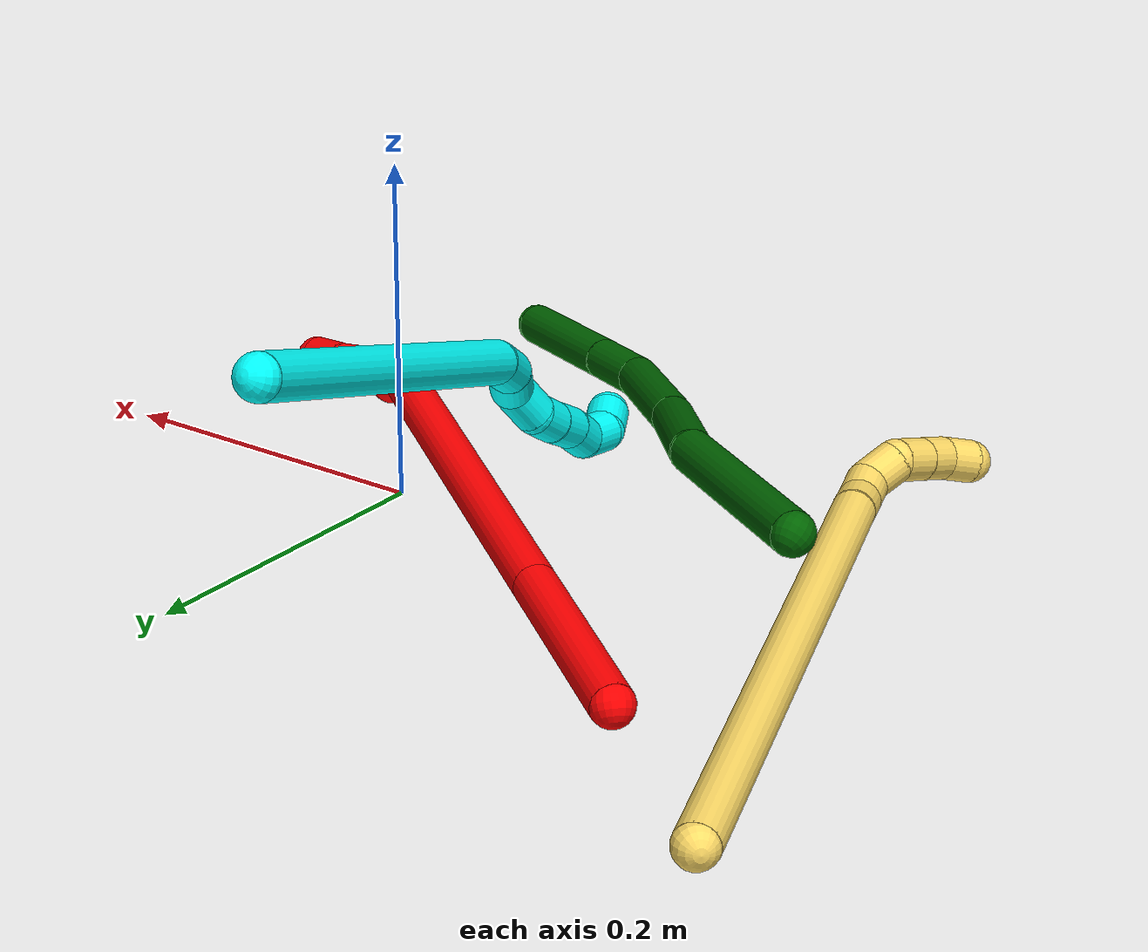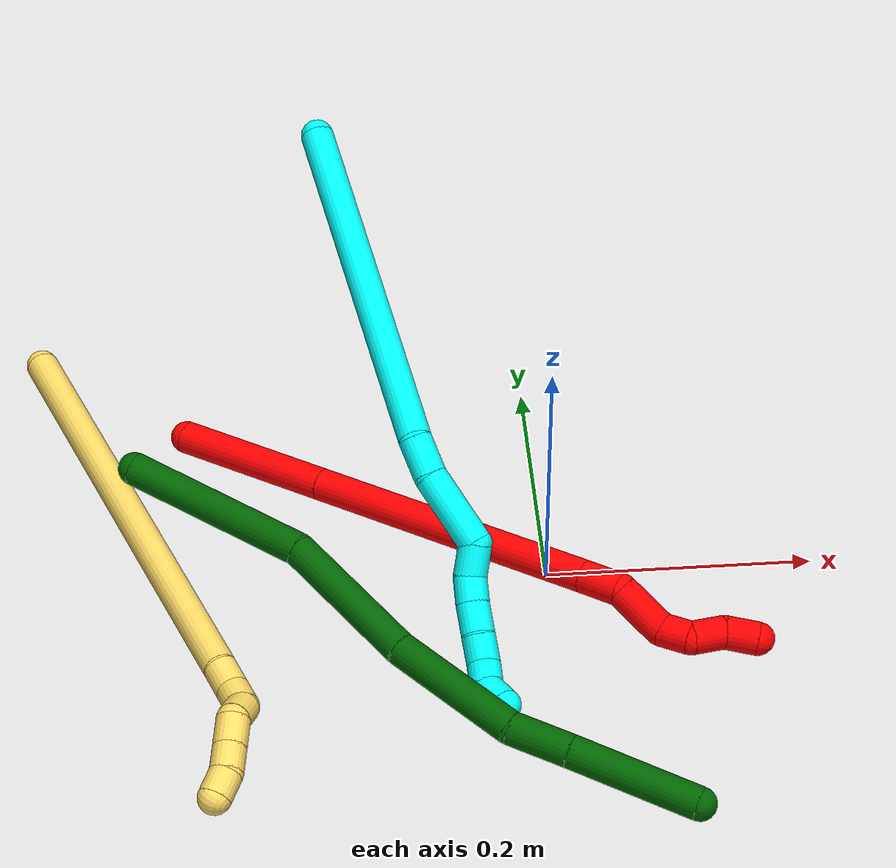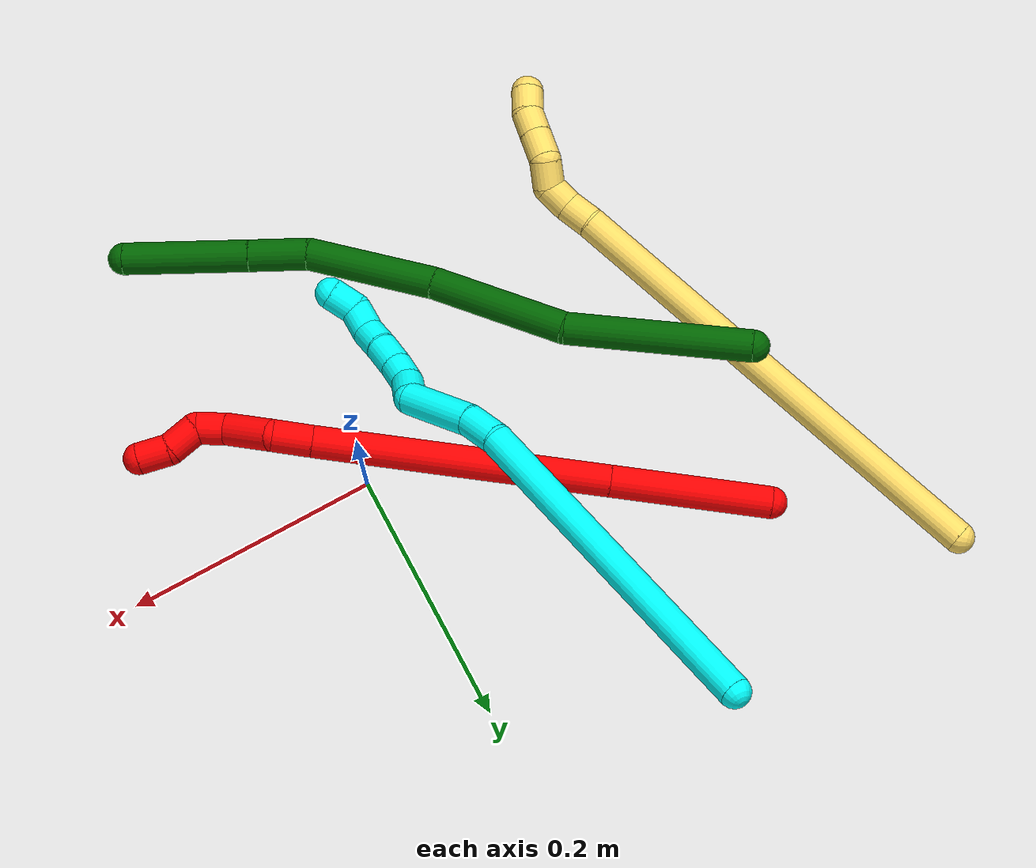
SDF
<sdf version="1.7">
 <world name="default">
  <model name="2">
   <static>0</static>
   <link name="2">
    <collision name="collision-cylinder-e_1_1_4">
     <pose>0.024957 -0.03979 -0.041198 2.37357 0.41092 0.95234</pose>
     <geometry><cylinder><radius>0.0125</radius><length>0.124954</length></cylinder></geometry>
     <surface>
      <friction><ode><mu>1.16</mu><mu2>1.16</mu2><slip1>0</slip1><slip2>0</slip2></ode></friction>
      <contact><ode><kp>1e+06</kp><kd>1</kd><max_vel>0</max_vel><min_depth>0.001</min_depth></ode></contact>
     </surface>
    </collision>
    <visual name="visual-cylinder-e_1_1_4">
     <pose>0.024957 -0.03979 -0.041198 2.37357 0.41092 0.95234</pose>
     <geometry><cylinder><radius>0.0125</radius><length>0.124954</length></cylinder></geometry>
     <material><ambient>1 0 0 1</ambient></material>
    </visual>
    <collision name="collision-cylinder-e_2_4_5">
     <pose>0.09571 -0.152585 -0.157852 2.37271 0.411314 0.952135</pose>
     <geometry><cylinder><radius>0.0125</radius><length>0.229089</length></cylinder></geometry>
     <surface>
      <friction><ode><mu>1.16</mu><mu2>1.16</mu2><slip1>0</slip1><slip2>0</slip2></ode></friction>
      <contact><ode><kp>1e+06</kp><kd>1</kd><max_vel>0</max_vel><min_depth>0.001</min_depth></ode></contact>
     </surface>
    </collision>
    <visual name="visual-cylinder-e_2_4_5">
     <pose>0.09571 -0.152585 -0.157852 2.37271 0.411314 0.952135</pose>
     <geometry><cylinder><radius>0.0125</radius><length>0.229089</length></cylinder></geometry>
     <material><ambient>1 0 0 1</ambient></material>
    </visual>
    <collision name="collision-cylinder-e_3_5_6">
     <pose>0.147825 -0.235201 -0.243484 2.38472 0.423989 0.992309</pose>
     <geometry><cylinder><radius>0.0125</radius><length>0.030717</length></cylinder></geometry>
     <surface>
      <friction><ode><mu>1.16</mu><mu2>1.16</mu2><slip1>0</slip1><slip2>0</slip2></ode></friction>
      <contact><ode><kp>1e+06</kp><kd>1</kd><max_vel>0</max_vel><min_depth>0.001</min_depth></ode></contact>
     </surface>
    </collision>
    <visual name="visual-cylinder-e_3_5_6">
     <pose>0.147825 -0.235201 -0.243484 2.38472 0.423989 0.992309</pose>
     <geometry><cylinder><radius>0.0125</radius><length>0.030717</length></cylinder></geometry>
     <material><ambient>1 0 0 1</ambient></material>
    </visual>
    <collision name="collision-cylinder-e_4_6_7">
     <pose>0.167466 -0.260216 -0.257243 1.79923 0.700092 0.861778</pose>
     <geometry><cylinder><radius>0.0125</radius><length>0.041357</length></cylinder></geometry>
     <surface>
      <friction><ode><mu>1.16</mu><mu2>1.16</mu2><slip1>0</slip1><slip2>0</slip2></ode></friction>
      <contact><ode><kp>1e+06</kp><kd>1</kd><max_vel>0</max_vel><min_depth>0.001</min_depth></ode></contact>
     </surface>
    </collision>
    <visual name="visual-cylinder-e_4_6_7">
     <pose>0.167466 -0.260216 -0.257243 1.79923 0.700092 0.861778</pose>
     <geometry><cylinder><radius>0.0125</radius><length>0.041357</length></cylinder></geometry>
     <material><ambient>1 0 0 1</ambient></material>
    </visual>
    <collision name="collision-cylinder-e_5_7_8">
     <pose>0.184645 -0.283928 -0.268107 2.29059 0.335754 0.715713</pose>
     <geometry><cylinder><radius>0.0125</radius><length>0.023402</length></cylinder></geometry>
     <surface>
      <friction><ode><mu>1.16</mu><mu2>1.16</mu2><slip1>0</slip1><slip2>0</slip2></ode></friction>
      <contact><ode><kp>1e+06</kp><kd>1</kd><max_vel>0</max_vel><min_depth>0.001</min_depth></ode></contact>
     </surface>
    </collision>
    <visual name="visual-cylinder-e_5_7_8">
     <pose>0.184645 -0.283928 -0.268107 2.29059 0.335754 0.715713</pose>
     <geometry><cylinder><radius>0.0125</radius><length>0.023402</length></cylinder></geometry>
     <material><ambient>1 0 0 1</ambient></material>
    </visual>
    <collision name="collision-cylinder-e_6_8_9">
     <pose>0.185044 -0.303871 -0.279476 1.90853 -0.273221 -0.383191</pose>
     <geometry><cylinder><radius>0.0125</radius><length>0.025615</length></cylinder></geometry>
     <surface>
      <friction><ode><mu>1.16</mu><mu2>1.16</mu2><slip1>0</slip1><slip2>0</slip2></ode></friction>
      <contact><ode><kp>1e+06</kp><kd>1</kd><max_vel>0</max_vel><min_depth>0.001</min_depth></ode></contact>
     </surface>
    </collision>
    <visual name="visual-cylinder-e_6_8_9">
     <pose>0.185044 -0.303871 -0.279476 1.90853 -0.273221 -0.383191</pose>
     <geometry><cylinder><radius>0.0125</radius><length>0.025615</length></cylinder></geometry>
     <material><ambient>1 0 0 1</ambient></material>
    </visual>
    <collision name="collision-cylinder-e_7_9_2">
     <pose>0.183385 -0.32667 -0.288732 2.00446 0.145043 0.22643</pose>
     <geometry><cylinder><radius>0.0125</radius><length>0.024865</length></cylinder></geometry>
     <surface>
      <friction><ode><mu>1.16</mu><mu2>1.16</mu2><slip1>0</slip1><slip2>0</slip2></ode></friction>
      <contact><ode><kp>1e+06</kp><kd>1</kd><max_vel>0</max_vel><min_depth>0.001</min_depth></ode></contact>
     </surface>
    </collision>
    <visual name="visual-cylinder-e_7_9_2">
     <pose>0.183385 -0.32667 -0.288732 2.00446 0.145043 0.22643</pose>
     <geometry><cylinder><radius>0.0125</radius><length>0.024865</length></cylinder></geometry>
     <material><ambient>1 0 0 1</ambient></material>
    </visual>
    <collision name="collision-sphere-2">
     <pose>0.185182 -0.337833 -0.293901 0 -0 0</pose>
     <geometry><sphere><radius>0.0125</radius></sphere></geometry>
     <surface>
      <friction><ode><mu>1.16</mu><mu2>1.16</mu2><slip1>0</slip1><slip2>0</slip2></ode></friction>
      <contact><ode><kp>1e+06</kp><kd>1</kd><max_vel>0</max_vel><min_depth>0.001</min_depth></ode></contact>
     </surface>
    </collision>
    <visual name="visual-sphere-2">
     <pose>0.185182 -0.337833 -0.293901 0 -0 0</pose>
     <geometry><sphere><radius>0.0125</radius></sphere></geometry>
     <material><ambient>1 0 0 1</ambient></material>
    </visual>
    <collision name="collision-sphere-9">
     <pose>0.181588 -0.315507 -0.283563 0 -0 0</pose>
     <geometry><sphere><radius>0.0125</radius></sphere></geometry>
     <surface>
      <friction><ode><mu>1.16</mu><mu2>1.16</mu2><slip1>0</slip1><slip2>0</slip2></ode></friction>
      <contact><ode><kp>1e+06</kp><kd>1</kd><max_vel>0</max_vel><min_depth>0.001</min_depth></ode></contact>
     </surface>
    </collision>
    <visual name="visual-sphere-9">
     <pose>0.181588 -0.315507 -0.283563 0 -0 0</pose>
     <geometry><sphere><radius>0.0125</radius></sphere></geometry>
     <material><ambient>1 0 0 1</ambient></material>
    </visual>
    <collision name="collision-sphere-4">
     <pose>0.049913 -0.079581 -0.082396 0 -0 0</pose>
     <geometry><sphere><radius>0.0125</radius></sphere></geometry>
     <surface>
      <friction><ode><mu>1.16</mu><mu2>1.16</mu2><slip1>0</slip1><slip2>0</slip2></ode></friction>
      <contact><ode><kp>1e+06</kp><kd>1</kd><max_vel>0</max_vel><min_depth>0.001</min_depth></ode></contact>
     </surface>
    </collision>
    <visual name="visual-sphere-4">
     <pose>0.049913 -0.079581 -0.082396 0 -0 0</pose>
     <geometry><sphere><radius>0.0125</radius></sphere></geometry>
     <material><ambient>1 0 0 1</ambient></material>
    </visual>
    <collision name="collision-sphere-1">
     <geometry><sphere><radius>0.0125</radius></sphere></geometry>
     <surface>
      <friction><ode><mu>1.16</mu><mu2>1.16</mu2><slip1>0</slip1><slip2>0</slip2></ode></friction>
      <contact><ode><kp>1e+06</kp><kd>1</kd><max_vel>0</max_vel><min_depth>0.001</min_depth></ode></contact>
     </surface>
    </collision>
    <visual name="visual-sphere-1">
     <geometry><sphere><radius>0.0125</radius></sphere></geometry>
     <material><ambient>1 0 0 1</ambient></material>
    </visual>
    <collision name="collision-sphere-8">
     <pose>0.1885 -0.292235 -0.27539 0 -0 0</pose>
     <geometry><sphere><radius>0.0125</radius></sphere></geometry>
     <surface>
      <friction><ode><mu>1.16</mu><mu2>1.16</mu2><slip1>0</slip1><slip2>0</slip2></ode></friction>
      <contact><ode><kp>1e+06</kp><kd>1</kd><max_vel>0</max_vel><min_depth>0.001</min_depth></ode></contact>
     </surface>
    </collision>
    <visual name="visual-sphere-8">
     <pose>0.1885 -0.292235 -0.27539 0 -0 0</pose>
     <geometry><sphere><radius>0.0125</radius></sphere></geometry>
     <material><ambient>1 0 0 1</ambient></material>
    </visual>
    <collision name="collision-sphere-5">
     <pose>0.141506 -0.225588 -0.233308 0 -0 0</pose>
     <geometry><sphere><radius>0.0125</radius></sphere></geometry>
     <surface>
      <friction><ode><mu>1.16</mu><mu2>1.16</mu2><slip1>0</slip1><slip2>0</slip2></ode></friction>
      <contact><ode><kp>1e+06</kp><kd>1</kd><max_vel>0</max_vel><min_depth>0.001</min_depth></ode></contact>
     </surface>
    </collision>
    <visual name="visual-sphere-5">
     <pose>0.141506 -0.225588 -0.233308 0 -0 0</pose>
     <geometry><sphere><radius>0.0125</radius></sphere></geometry>
     <material><ambient>1 0 0 1</ambient></material>
    </visual>
    <collision name="collision-sphere-6">
     <pose>0.154143 -0.244813 -0.253661 0 -0 0</pose>
     <geometry><sphere><radius>0.0125</radius></sphere></geometry>
     <surface>
      <friction><ode><mu>1.16</mu><mu2>1.16</mu2><slip1>0</slip1><slip2>0</slip2></ode></friction>
      <contact><ode><kp>1e+06</kp><kd>1</kd><max_vel>0</max_vel><min_depth>0.001</min_depth></ode></contact>
     </surface>
    </collision>
    <visual name="visual-sphere-6">
     <pose>0.154143 -0.244813 -0.253661 0 -0 0</pose>
     <geometry><sphere><radius>0.0125</radius></sphere></geometry>
     <material><ambient>1 0 0 1</ambient></material>
    </visual>
    <collision name="collision-sphere-7">
     <pose>0.180789 -0.27562 -0.260824 0 -0 0</pose>
     <geometry><sphere><radius>0.0125</radius></sphere></geometry>
     <surface>
      <friction><ode><mu>1.16</mu><mu2>1.16</mu2><slip1>0</slip1><slip2>0</slip2></ode></friction>
      <contact><ode><kp>1e+06</kp><kd>1</kd><max_vel>0</max_vel><min_depth>0.001</min_depth></ode></contact>
     </surface>
    </collision>
    <visual name="visual-sphere-7">
     <pose>0.180789 -0.27562 -0.260824 0 -0 0</pose>
     <geometry><sphere><radius>0.0125</radius></sphere></geometry>
     <material><ambient>1 0 0 1</ambient></material>
    </visual>
    <inertial>
     <pose>0.100264 -0.16093 -0.160081 0 -0 0</pose>
     <mass>0.5</mass>
     <inertia>
      <ixx>0.00154</ixx>
      <ixy>0</ixy>
      <ixz>0</ixz>
      <iyy>0.000637</iyy>
      <iyz>0</iyz>
      <izz>0.000264</izz>
     </inertia>
    </inertial>
   </link>
   <pose>-0.265407 0.160398 0.011487 2.63591 0.42303 -1.68916</pose>
  </model>
  <model name="3">
   <static>0</static>
   <link name="3">
    <collision name="collision-cylinder-e_1_1_4">
     <pose>-0.014552 -0.021199 -0.135371 2.98626 -0.105804 -1.19489</pose>
     <geometry><cylinder><radius>0.0125</radius><length>0.275583</length></cylinder></geometry>
     <surface>
      <friction><ode><mu>1.16</mu><mu2>1.16</mu2><slip1>0</slip1><slip2>0</slip2></ode></friction>
      <contact><ode><kp>1e+06</kp><kd>1</kd><max_vel>0</max_vel><min_depth>0.001</min_depth></ode></contact>
     </surface>
    </collision>
    <visual name="visual-cylinder-e_1_1_4">
     <pose>-0.014552 -0.021199 -0.135371 2.98626 -0.105804 -1.19489</pose>
     <geometry><cylinder><radius>0.0125</radius><length>0.275583</length></cylinder></geometry>
     <material><ambient>0.003922 1 0.996078 1</ambient></material>
    </visual>
    <collision name="collision-cylinder-e_2_4_5">
     <pose>-0.028537 -0.047863 -0.28484 2.77177 0.037448 0.199562</pose>
     <geometry><cylinder><radius>0.0125</radius><length>0.03026</length></cylinder></geometry>
     <surface>
      <friction><ode><mu>1.16</mu><mu2>1.16</mu2><slip1>0</slip1><slip2>0</slip2></ode></friction>
      <contact><ode><kp>1e+06</kp><kd>1</kd><max_vel>0</max_vel><min_depth>0.001</min_depth></ode></contact>
     </surface>
    </collision>
    <visual name="visual-cylinder-e_2_4_5">
     <pose>-0.028537 -0.047863 -0.28484 2.77177 0.037448 0.199562</pose>
     <geometry><cylinder><radius>0.0125</radius><length>0.03026</length></cylinder></geometry>
     <material><ambient>0.003922 1 0.996078 1</ambient></material>
    </visual>
    <collision name="collision-cylinder-e_3_5_6">
     <pose>-0.028746 -0.069501 -0.32383 2.56543 -0.026135 -0.088146</pose>
     <geometry><cylinder><radius>0.0125</radius><length>0.059391</length></cylinder></geometry>
     <surface>
      <friction><ode><mu>1.16</mu><mu2>1.16</mu2><slip1>0</slip1><slip2>0</slip2></ode></friction>
      <contact><ode><kp>1e+06</kp><kd>1</kd><max_vel>0</max_vel><min_depth>0.001</min_depth></ode></contact>
     </surface>
    </collision>
    <visual name="visual-cylinder-e_3_5_6">
     <pose>-0.028746 -0.069501 -0.32383 2.56543 -0.026135 -0.088146</pose>
     <geometry><cylinder><radius>0.0125</radius><length>0.059391</length></cylinder></geometry>
     <material><ambient>0.003922 1 0.996078 1</ambient></material>
    </visual>
    <collision name="collision-cylinder-e_4_6_7">
     <pose>-0.022462 -0.086523 -0.358967 3.05889 0.601806 2.87652</pose>
     <geometry><cylinder><radius>0.0125</radius><length>0.024942</length></cylinder></geometry>
     <surface>
      <friction><ode><mu>1.16</mu><mu2>1.16</mu2><slip1>0</slip1><slip2>0</slip2></ode></friction>
      <contact><ode><kp>1e+06</kp><kd>1</kd><max_vel>0</max_vel><min_depth>0.001</min_depth></ode></contact>
     </surface>
    </collision>
    <visual name="visual-cylinder-e_4_6_7">
     <pose>-0.022462 -0.086523 -0.358967 3.05889 0.601806 2.87652</pose>
     <geometry><cylinder><radius>0.0125</radius><length>0.024942</length></cylinder></geometry>
     <material><ambient>0.003922 1 0.996078 1</ambient></material>
    </visual>
    <collision name="collision-cylinder-e_5_7_8">
     <pose>-0.013422 -0.088651 -0.379231 3.01464 0.193626 1.9825</pose>
     <geometry><cylinder><radius>0.0125</radius><length>0.020584</length></cylinder></geometry>
     <surface>
      <friction><ode><mu>1.16</mu><mu2>1.16</mu2><slip1>0</slip1><slip2>0</slip2></ode></friction>
      <contact><ode><kp>1e+06</kp><kd>1</kd><max_vel>0</max_vel><min_depth>0.001</min_depth></ode></contact>
     </surface>
    </collision>
    <visual name="visual-cylinder-e_5_7_8">
     <pose>-0.013422 -0.088651 -0.379231 3.01464 0.193626 1.9825</pose>
     <geometry><cylinder><radius>0.0125</radius><length>0.020584</length></cylinder></geometry>
     <material><ambient>0.003922 1 0.996078 1</ambient></material>
    </visual>
    <collision name="collision-cylinder-e_6_8_9">
     <pose>-0.010393 -0.091656 -0.400787 2.99308 0.089628 1.08494</pose>
     <geometry><cylinder><radius>0.0125</radius><length>0.023426</length></cylinder></geometry>
     <surface>
      <friction><ode><mu>1.16</mu><mu2>1.16</mu2><slip1>0</slip1><slip2>0</slip2></ode></friction>
      <contact><ode><kp>1e+06</kp><kd>1</kd><max_vel>0</max_vel><min_depth>0.001</min_depth></ode></contact>
     </surface>
    </collision>
    <visual name="visual-cylinder-e_6_8_9">
     <pose>-0.010393 -0.091656 -0.400787 2.99308 0.089628 1.08494</pose>
     <geometry><cylinder><radius>0.0125</radius><length>0.023426</length></cylinder></geometry>
     <material><ambient>0.003922 1 0.996078 1</ambient></material>
    </visual>
    <collision name="collision-cylinder-e_7_9_10">
     <pose>-0.007133 -0.095966 -0.42294 2.90283 0.199737 1.39187</pose>
     <geometry><cylinder><radius>0.0125</radius><length>0.022293</length></cylinder></geometry>
     <surface>
      <friction><ode><mu>1.16</mu><mu2>1.16</mu2><slip1>0</slip1><slip2>0</slip2></ode></friction>
      <contact><ode><kp>1e+06</kp><kd>1</kd><max_vel>0</max_vel><min_depth>0.001</min_depth></ode></contact>
     </surface>
    </collision>
    <visual name="visual-cylinder-e_7_9_10">
     <pose>-0.007133 -0.095966 -0.42294 2.90283 0.199737 1.39187</pose>
     <geometry><cylinder><radius>0.0125</radius><length>0.022293</length></cylinder></geometry>
     <material><ambient>0.003922 1 0.996078 1</ambient></material>
    </visual>
    <collision name="collision-cylinder-e_8_10_11">
     <pose>-0.006884 -0.097296 -0.443897 -3.02098 -0.18622 1.99365</pose>
     <geometry><cylinder><radius>0.0125</radius><length>0.021202</length></cylinder></geometry>
     <surface>
      <friction><ode><mu>1.16</mu><mu2>1.16</mu2><slip1>0</slip1><slip2>0</slip2></ode></friction>
      <contact><ode><kp>1e+06</kp><kd>1</kd><max_vel>0</max_vel><min_depth>0.001</min_depth></ode></contact>
     </surface>
    </collision>
    <visual name="visual-cylinder-e_8_10_11">
     <pose>-0.006884 -0.097296 -0.443897 -3.02098 -0.18622 1.99365</pose>
     <geometry><cylinder><radius>0.0125</radius><length>0.021202</length></cylinder></geometry>
     <material><ambient>0.003922 1 0.996078 1</ambient></material>
    </visual>
    <collision name="collision-cylinder-e_9_11_2">
     <pose>-0.015348 -0.098371 -0.463005 2.88198 -0.6219 -2.36991</pose>
     <geometry><cylinder><radius>0.0125</radius><length>0.022319</length></cylinder></geometry>
     <surface>
      <friction><ode><mu>1.16</mu><mu2>1.16</mu2><slip1>0</slip1><slip2>0</slip2></ode></friction>
      <contact><ode><kp>1e+06</kp><kd>1</kd><max_vel>0</max_vel><min_depth>0.001</min_depth></ode></contact>
     </surface>
    </collision>
    <visual name="visual-cylinder-e_9_11_2">
     <pose>-0.015348 -0.098371 -0.463005 2.88198 -0.6219 -2.36991</pose>
     <geometry><cylinder><radius>0.0125</radius><length>0.022319</length></cylinder></geometry>
     <material><ambient>0.003922 1 0.996078 1</ambient></material>
    </visual>
    <collision name="collision-sphere-2">
     <pose>-0.021849 -0.100699 -0.471771 0 -0 0</pose>
     <geometry><sphere><radius>0.0125</radius></sphere></geometry>
     <surface>
      <friction><ode><mu>1.16</mu><mu2>1.16</mu2><slip1>0</slip1><slip2>0</slip2></ode></friction>
      <contact><ode><kp>1e+06</kp><kd>1</kd><max_vel>0</max_vel><min_depth>0.001</min_depth></ode></contact>
     </surface>
    </collision>
    <visual name="visual-sphere-2">
     <pose>-0.021849 -0.100699 -0.471771 0 -0 0</pose>
     <geometry><sphere><radius>0.0125</radius></sphere></geometry>
     <material><ambient>0.003922 1 0.996078 1</ambient></material>
    </visual>
    <collision name="collision-sphere-11">
     <pose>-0.008846 -0.096043 -0.454238 0 -0 0</pose>
     <geometry><sphere><radius>0.0125</radius></sphere></geometry>
     <surface>
      <friction><ode><mu>1.16</mu><mu2>1.16</mu2><slip1>0</slip1><slip2>0</slip2></ode></friction>
      <contact><ode><kp>1e+06</kp><kd>1</kd><max_vel>0</max_vel><min_depth>0.001</min_depth></ode></contact>
     </surface>
    </collision>
    <visual name="visual-sphere-11">
     <pose>-0.008846 -0.096043 -0.454238 0 -0 0</pose>
     <geometry><sphere><radius>0.0125</radius></sphere></geometry>
     <material><ambient>0.003922 1 0.996078 1</ambient></material>
    </visual>
    <collision name="collision-sphere-10">
     <pose>-0.004921 -0.098549 -0.433555 0 -0 0</pose>
     <geometry><sphere><radius>0.0125</radius></sphere></geometry>
     <surface>
      <friction><ode><mu>1.16</mu><mu2>1.16</mu2><slip1>0</slip1><slip2>0</slip2></ode></friction>
      <contact><ode><kp>1e+06</kp><kd>1</kd><max_vel>0</max_vel><min_depth>0.001</min_depth></ode></contact>
     </surface>
    </collision>
    <visual name="visual-sphere-10">
     <pose>-0.004921 -0.098549 -0.433555 0 -0 0</pose>
     <geometry><sphere><radius>0.0125</radius></sphere></geometry>
     <material><ambient>0.003922 1 0.996078 1</ambient></material>
    </visual>
    <collision name="collision-sphere-9">
     <pose>-0.009344 -0.093382 -0.412325 0 -0 0</pose>
     <geometry><sphere><radius>0.0125</radius></sphere></geometry>
     <surface>
      <friction><ode><mu>1.16</mu><mu2>1.16</mu2><slip1>0</slip1><slip2>0</slip2></ode></friction>
      <contact><ode><kp>1e+06</kp><kd>1</kd><max_vel>0</max_vel><min_depth>0.001</min_depth></ode></contact>
     </surface>
    </collision>
    <visual name="visual-sphere-9">
     <pose>-0.009344 -0.093382 -0.412325 0 -0 0</pose>
     <geometry><sphere><radius>0.0125</radius></sphere></geometry>
     <material><ambient>0.003922 1 0.996078 1</ambient></material>
    </visual>
    <collision name="collision-sphere-4">
     <pose>-0.029103 -0.042398 -0.270742 0 -0 0</pose>
     <geometry><sphere><radius>0.0125</radius></sphere></geometry>
     <surface>
      <friction><ode><mu>1.16</mu><mu2>1.16</mu2><slip1>0</slip1><slip2>0</slip2></ode></friction>
      <contact><ode><kp>1e+06</kp><kd>1</kd><max_vel>0</max_vel><min_depth>0.001</min_depth></ode></contact>
     </surface>
    </collision>
    <visual name="visual-sphere-4">
     <pose>-0.029103 -0.042398 -0.270742 0 -0 0</pose>
     <geometry><sphere><radius>0.0125</radius></sphere></geometry>
     <material><ambient>0.003922 1 0.996078 1</ambient></material>
    </visual>
    <collision name="collision-sphere-1">
     <geometry><sphere><radius>0.0125</radius></sphere></geometry>
     <surface>
      <friction><ode><mu>1.16</mu><mu2>1.16</mu2><slip1>0</slip1><slip2>0</slip2></ode></friction>
      <contact><ode><kp>1e+06</kp><kd>1</kd><max_vel>0</max_vel><min_depth>0.001</min_depth></ode></contact>
     </surface>
    </collision>
    <visual name="visual-sphere-1">
     <geometry><sphere><radius>0.0125</radius></sphere></geometry>
     <material><ambient>0.003922 1 0.996078 1</ambient></material>
    </visual>
    <collision name="collision-sphere-8">
     <pose>-0.011441 -0.089929 -0.389249 0 -0 0</pose>
     <geometry><sphere><radius>0.0125</radius></sphere></geometry>
     <surface>
      <friction><ode><mu>1.16</mu><mu2>1.16</mu2><slip1>0</slip1><slip2>0</slip2></ode></friction>
      <contact><ode><kp>1e+06</kp><kd>1</kd><max_vel>0</max_vel><min_depth>0.001</min_depth></ode></contact>
     </surface>
    </collision>
    <visual name="visual-sphere-8">
     <pose>-0.011441 -0.089929 -0.389249 0 -0 0</pose>
     <geometry><sphere><radius>0.0125</radius></sphere></geometry>
     <material><ambient>0.003922 1 0.996078 1</ambient></material>
    </visual>
    <collision name="collision-sphere-5">
     <pose>-0.02797 -0.053328 -0.298937 0 -0 0</pose>
     <geometry><sphere><radius>0.0125</radius></sphere></geometry>
     <surface>
      <friction><ode><mu>1.16</mu><mu2>1.16</mu2><slip1>0</slip1><slip2>0</slip2></ode></friction>
      <contact><ode><kp>1e+06</kp><kd>1</kd><max_vel>0</max_vel><min_depth>0.001</min_depth></ode></contact>
     </surface>
    </collision>
    <visual name="visual-sphere-5">
     <pose>-0.02797 -0.053328 -0.298937 0 -0 0</pose>
     <geometry><sphere><radius>0.0125</radius></sphere></geometry>
     <material><ambient>0.003922 1 0.996078 1</ambient></material>
    </visual>
    <collision name="collision-sphere-6">
     <pose>-0.029522 -0.085673 -0.348723 0 -0 0</pose>
     <geometry><sphere><radius>0.0125</radius></sphere></geometry>
     <surface>
      <friction><ode><mu>1.16</mu><mu2>1.16</mu2><slip1>0</slip1><slip2>0</slip2></ode></friction>
      <contact><ode><kp>1e+06</kp><kd>1</kd><max_vel>0</max_vel><min_depth>0.001</min_depth></ode></contact>
     </surface>
    </collision>
    <visual name="visual-sphere-6">
     <pose>-0.029522 -0.085673 -0.348723 0 -0 0</pose>
     <geometry><sphere><radius>0.0125</radius></sphere></geometry>
     <material><ambient>0.003922 1 0.996078 1</ambient></material>
    </visual>
    <collision name="collision-sphere-7">
     <pose>-0.015402 -0.087372 -0.369212 0 -0 0</pose>
     <geometry><sphere><radius>0.0125</radius></sphere></geometry>
     <surface>
      <friction><ode><mu>1.16</mu><mu2>1.16</mu2><slip1>0</slip1><slip2>0</slip2></ode></friction>
      <contact><ode><kp>1e+06</kp><kd>1</kd><max_vel>0</max_vel><min_depth>0.001</min_depth></ode></contact>
     </surface>
    </collision>
    <visual name="visual-sphere-7">
     <pose>-0.015402 -0.087372 -0.369212 0 -0 0</pose>
     <geometry><sphere><radius>0.0125</radius></sphere></geometry>
     <material><ambient>0.003922 1 0.996078 1</ambient></material>
    </visual>
    <inertial>
     <pose>-0.016617 -0.047892 -0.24096 0 -0 0</pose>
     <mass>0.5</mass>
     <inertia>
      <ixx>-0.000959</ixx>
      <ixy>0</ixy>
      <ixz>0</ixz>
      <iyy>-0.002252</iyy>
      <iyz>0</iyz>
      <izz>0.000431</izz>
     </inertia>
    </inertial>
   </link>
   <pose>-0.153023 0.288658 0.20189 0.94528 0.959977 2.63035</pose>
  </model>
  <model name="5">
   <static>0</static>
   <link name="5">
    <collision name="collision-cylinder-e_1_1_4">
     <pose>0.056867 -0.056515 -0.167977 2.81704 0.310488 1.52577</pose>
     <geometry><cylinder><radius>0.0125</radius><length>0.372258</length></cylinder></geometry>
     <surface>
      <friction><ode><mu>1.16</mu><mu2>1.16</mu2><slip1>0</slip1><slip2>0</slip2></ode></friction>
      <contact><ode><kp>1e+06</kp><kd>1</kd><max_vel>0</max_vel><min_depth>0.001</min_depth></ode></contact>
     </surface>
    </collision>
    <visual name="visual-cylinder-e_1_1_4">
     <pose>0.056867 -0.056515 -0.167977 2.81704 0.310488 1.52577</pose>
     <geometry><cylinder><radius>0.0125</radius><length>0.372258</length></cylinder></geometry>
     <material><ambient>1 0.858824 0.4 1</ambient></material>
    </visual>
    <collision name="collision-cylinder-e_2_4_5">
     <pose>0.11545 -0.116902 -0.346229 2.7812 0.155083 0.806282</pose>
     <geometry><cylinder><radius>0.0125</radius><length>0.022227</length></cylinder></geometry>
     <surface>
      <friction><ode><mu>1.16</mu><mu2>1.16</mu2><slip1>0</slip1><slip2>0</slip2></ode></friction>
      <contact><ode><kp>1e+06</kp><kd>1</kd><max_vel>0</max_vel><min_depth>0.001</min_depth></ode></contact>
     </surface>
    </collision>
    <visual name="visual-cylinder-e_2_4_5">
     <pose>0.11545 -0.116902 -0.346229 2.7812 0.155083 0.806282</pose>
     <geometry><cylinder><radius>0.0125</radius><length>0.022227</length></cylinder></geometry>
     <material><ambient>1 0.858824 0.4 1</ambient></material>
    </visual>
    <collision name="collision-cylinder-e_3_5_6">
     <pose>0.121416 -0.123637 -0.365487 2.83303 0.423376 1.88876</pose>
     <geometry><cylinder><radius>0.0125</radius><length>0.020685</length></cylinder></geometry>
     <surface>
      <friction><ode><mu>1.16</mu><mu2>1.16</mu2><slip1>0</slip1><slip2>0</slip2></ode></friction>
      <contact><ode><kp>1e+06</kp><kd>1</kd><max_vel>0</max_vel><min_depth>0.001</min_depth></ode></contact>
     </surface>
    </collision>
    <visual name="visual-cylinder-e_3_5_6">
     <pose>0.121416 -0.123637 -0.365487 2.83303 0.423376 1.88876</pose>
     <geometry><cylinder><radius>0.0125</radius><length>0.020685</length></cylinder></geometry>
     <material><ambient>1 0.858824 0.4 1</ambient></material>
    </visual>
    <collision name="collision-cylinder-e_4_6_7">
     <pose>0.13426 -0.13208 -0.378286 2.17056 0.904434 1.48825</pose>
     <geometry><cylinder><radius>0.0125</radius><length>0.021868</length></cylinder></geometry>
     <surface>
      <friction><ode><mu>1.16</mu><mu2>1.16</mu2><slip1>0</slip1><slip2>0</slip2></ode></friction>
      <contact><ode><kp>1e+06</kp><kd>1</kd><max_vel>0</max_vel><min_depth>0.001</min_depth></ode></contact>
     </surface>
    </collision>
    <visual name="visual-cylinder-e_4_6_7">
     <pose>0.13426 -0.13208 -0.378286 2.17056 0.904434 1.48825</pose>
     <geometry><cylinder><radius>0.0125</radius><length>0.021868</length></cylinder></geometry>
     <material><ambient>1 0.858824 0.4 1</ambient></material>
    </visual>
    <collision name="collision-cylinder-e_5_7_8">
     <pose>0.145428 -0.146545 -0.38873 2.21171 0.228123 0.449057</pose>
     <geometry><cylinder><radius>0.0125</radius><length>0.022762</length></cylinder></geometry>
     <surface>
      <friction><ode><mu>1.16</mu><mu2>1.16</mu2><slip1>0</slip1><slip2>0</slip2></ode></friction>
      <contact><ode><kp>1e+06</kp><kd>1</kd><max_vel>0</max_vel><min_depth>0.001</min_depth></ode></contact>
     </surface>
    </collision>
    <visual name="visual-cylinder-e_5_7_8">
     <pose>0.145428 -0.146545 -0.38873 2.21171 0.228123 0.449057</pose>
     <geometry><cylinder><radius>0.0125</radius><length>0.022762</length></cylinder></geometry>
     <material><ambient>1 0.858824 0.4 1</ambient></material>
    </visual>
    <collision name="collision-cylinder-e_6_8_9">
     <pose>0.150279 -0.163254 -0.40119 2.21142 0.229211 0.450988</pose>
     <geometry><cylinder><radius>0.0125</radius><length>0.020038</length></cylinder></geometry>
     <surface>
      <friction><ode><mu>1.16</mu><mu2>1.16</mu2><slip1>0</slip1><slip2>0</slip2></ode></friction>
      <contact><ode><kp>1e+06</kp><kd>1</kd><max_vel>0</max_vel><min_depth>0.001</min_depth></ode></contact>
     </surface>
    </collision>
    <visual name="visual-cylinder-e_6_8_9">
     <pose>0.150279 -0.163254 -0.40119 2.21142 0.229211 0.450988</pose>
     <geometry><cylinder><radius>0.0125</radius><length>0.020038</length></cylinder></geometry>
     <material><ambient>1 0.858824 0.4 1</ambient></material>
    </visual>
    <collision name="collision-cylinder-e_7_9_2">
     <pose>0.154968 -0.180342 -0.410176 1.89892 0.241698 0.336054</pose>
     <geometry><cylinder><radius>0.0125</radius><length>0.020162</length></cylinder></geometry>
     <surface>
      <friction><ode><mu>1.16</mu><mu2>1.16</mu2><slip1>0</slip1><slip2>0</slip2></ode></friction>
      <contact><ode><kp>1e+06</kp><kd>1</kd><max_vel>0</max_vel><min_depth>0.001</min_depth></ode></contact>
     </surface>
    </collision>
    <visual name="visual-cylinder-e_7_9_2">
     <pose>0.154968 -0.180342 -0.410176 1.89892 0.241698 0.336054</pose>
     <geometry><cylinder><radius>0.0125</radius><length>0.020162</length></cylinder></geometry>
     <material><ambient>1 0.858824 0.4 1</ambient></material>
    </visual>
    <collision name="collision-sphere-2">
     <pose>0.157381 -0.189608 -0.413331 0 -0 0</pose>
     <geometry><sphere><radius>0.0125</radius></sphere></geometry>
     <surface>
      <friction><ode><mu>1.16</mu><mu2>1.16</mu2><slip1>0</slip1><slip2>0</slip2></ode></friction>
      <contact><ode><kp>1e+06</kp><kd>1</kd><max_vel>0</max_vel><min_depth>0.001</min_depth></ode></contact>
     </surface>
    </collision>
    <visual name="visual-sphere-2">
     <pose>0.157381 -0.189608 -0.413331 0 -0 0</pose>
     <geometry><sphere><radius>0.0125</radius></sphere></geometry>
     <material><ambient>1 0.858824 0.4 1</ambient></material>
    </visual>
    <collision name="collision-sphere-9">
     <pose>0.152555 -0.171076 -0.407022 0 -0 0</pose>
     <geometry><sphere><radius>0.0125</radius></sphere></geometry>
     <surface>
      <friction><ode><mu>1.16</mu><mu2>1.16</mu2><slip1>0</slip1><slip2>0</slip2></ode></friction>
      <contact><ode><kp>1e+06</kp><kd>1</kd><max_vel>0</max_vel><min_depth>0.001</min_depth></ode></contact>
     </surface>
    </collision>
    <visual name="visual-sphere-9">
     <pose>0.152555 -0.171076 -0.407022 0 -0 0</pose>
     <geometry><sphere><radius>0.0125</radius></sphere></geometry>
     <material><ambient>1 0.858824 0.4 1</ambient></material>
    </visual>
    <collision name="collision-sphere-4">
     <pose>0.113733 -0.11303 -0.335954 0 -0 0</pose>
     <geometry><sphere><radius>0.0125</radius></sphere></geometry>
     <surface>
      <friction><ode><mu>1.16</mu><mu2>1.16</mu2><slip1>0</slip1><slip2>0</slip2></ode></friction>
      <contact><ode><kp>1e+06</kp><kd>1</kd><max_vel>0</max_vel><min_depth>0.001</min_depth></ode></contact>
     </surface>
    </collision>
    <visual name="visual-sphere-4">
     <pose>0.113733 -0.11303 -0.335954 0 -0 0</pose>
     <geometry><sphere><radius>0.0125</radius></sphere></geometry>
     <material><ambient>1 0.858824 0.4 1</ambient></material>
    </visual>
    <collision name="collision-sphere-1">
     <geometry><sphere><radius>0.0125</radius></sphere></geometry>
     <surface>
      <friction><ode><mu>1.16</mu><mu2>1.16</mu2><slip1>0</slip1><slip2>0</slip2></ode></friction>
      <contact><ode><kp>1e+06</kp><kd>1</kd><max_vel>0</max_vel><min_depth>0.001</min_depth></ode></contact>
     </surface>
    </collision>
    <visual name="visual-sphere-1">
     <geometry><sphere><radius>0.0125</radius></sphere></geometry>
     <material><ambient>1 0.858824 0.4 1</ambient></material>
    </visual>
    <collision name="collision-sphere-8">
     <pose>0.148002 -0.155431 -0.395358 0 -0 0</pose>
     <geometry><sphere><radius>0.0125</radius></sphere></geometry>
     <surface>
      <friction><ode><mu>1.16</mu><mu2>1.16</mu2><slip1>0</slip1><slip2>0</slip2></ode></friction>
      <contact><ode><kp>1e+06</kp><kd>1</kd><max_vel>0</max_vel><min_depth>0.001</min_depth></ode></contact>
     </surface>
    </collision>
    <visual name="visual-sphere-8">
     <pose>0.148002 -0.155431 -0.395358 0 -0 0</pose>
     <geometry><sphere><radius>0.0125</radius></sphere></geometry>
     <material><ambient>1 0.858824 0.4 1</ambient></material>
    </visual>
    <collision name="collision-sphere-5">
     <pose>0.117167 -0.120774 -0.356503 0 -0 0</pose>
     <geometry><sphere><radius>0.0125</radius></sphere></geometry>
     <surface>
      <friction><ode><mu>1.16</mu><mu2>1.16</mu2><slip1>0</slip1><slip2>0</slip2></ode></friction>
      <contact><ode><kp>1e+06</kp><kd>1</kd><max_vel>0</max_vel><min_depth>0.001</min_depth></ode></contact>
     </surface>
    </collision>
    <visual name="visual-sphere-5">
     <pose>0.117167 -0.120774 -0.356503 0 -0 0</pose>
     <geometry><sphere><radius>0.0125</radius></sphere></geometry>
     <material><ambient>1 0.858824 0.4 1</ambient></material>
    </visual>
    <collision name="collision-sphere-6">
     <pose>0.125665 -0.126501 -0.374471 0 -0 0</pose>
     <geometry><sphere><radius>0.0125</radius></sphere></geometry>
     <surface>
      <friction><ode><mu>1.16</mu><mu2>1.16</mu2><slip1>0</slip1><slip2>0</slip2></ode></friction>
      <contact><ode><kp>1e+06</kp><kd>1</kd><max_vel>0</max_vel><min_depth>0.001</min_depth></ode></contact>
     </surface>
    </collision>
    <visual name="visual-sphere-6">
     <pose>0.125665 -0.126501 -0.374471 0 -0 0</pose>
     <geometry><sphere><radius>0.0125</radius></sphere></geometry>
     <material><ambient>1 0.858824 0.4 1</ambient></material>
    </visual>
    <collision name="collision-sphere-7">
     <pose>0.142855 -0.137659 -0.382101 0 -0 0</pose>
     <geometry><sphere><radius>0.0125</radius></sphere></geometry>
     <surface>
      <friction><ode><mu>1.16</mu><mu2>1.16</mu2><slip1>0</slip1><slip2>0</slip2></ode></friction>
      <contact><ode><kp>1e+06</kp><kd>1</kd><max_vel>0</max_vel><min_depth>0.001</min_depth></ode></contact>
     </surface>
    </collision>
    <visual name="visual-sphere-7">
     <pose>0.142855 -0.137659 -0.382101 0 -0 0</pose>
     <geometry><sphere><radius>0.0125</radius></sphere></geometry>
     <material><ambient>1 0.858824 0.4 1</ambient></material>
    </visual>
    <inertial>
     <pose>0.077257 -0.07865 -0.222432 0 -0 0</pose>
     <mass>0.5</mass>
     <inertia>
      <ixx>0.004311</ixx>
      <ixy>0</ixy>
      <ixz>0</ixz>
      <iyy>0.004328</iyy>
      <iyz>0</iyz>
      <izz>-3.8e-05</izz>
     </inertia>
    </inertial>
   </link>
   <pose>-0.37848 0.251891 0.012225 1.37653 -1.03527 -2.18337</pose>
  </model>
  <model name="6">
   <static>0</static>
   <link name="6">
    <collision name="collision-cylinder-e_1_1_4">
     <pose>0.046617 -0.046785 0.02849 1.02382 0.705085 0.407693</pose>
     <geometry><cylinder><radius>0.0125</radius><length>0.143856</length></cylinder></geometry>
     <surface>
      <friction><ode><mu>1.16</mu><mu2>1.16</mu2><slip1>0</slip1><slip2>0</slip2></ode></friction>
      <contact><ode><kp>1e+06</kp><kd>1</kd><max_vel>0</max_vel><min_depth>0.001</min_depth></ode></contact>
     </surface>
    </collision>
    <visual name="visual-cylinder-e_1_1_4">
     <pose>0.046617 -0.046785 0.02849 1.02382 0.705085 0.407693</pose>
     <geometry><cylinder><radius>0.0125</radius><length>0.143856</length></cylinder></geometry>
     <material><ambient>0 0.392157 0.003922 1</ambient></material>
    </visual>
    <collision name="collision-cylinder-e_2_4_5">
     <pose>0.11502 -0.137136 0.082359 1.04332 0.407885 0.236634</pose>
     <geometry><cylinder><radius>0.0125</radius><length>0.109848</length></cylinder></geometry>
     <surface>
      <friction><ode><mu>1.16</mu><mu2>1.16</mu2><slip1>0</slip1><slip2>0</slip2></ode></friction>
      <contact><ode><kp>1e+06</kp><kd>1</kd><max_vel>0</max_vel><min_depth>0.001</min_depth></ode></contact>
     </surface>
    </collision>
    <visual name="visual-cylinder-e_2_4_5">
     <pose>0.11502 -0.137136 0.082359 1.04332 0.407885 0.236634</pose>
     <geometry><cylinder><radius>0.0125</radius><length>0.109848</length></cylinder></geometry>
     <material><ambient>0 0.392157 0.003922 1</ambient></material>
    </visual>
    <collision name="collision-cylinder-e_3_5_6">
     <pose>0.163219 -0.217659 0.130637 1.01608 0.545916 0.309252</pose>
     <geometry><cylinder><radius>0.0125</radius><length>0.101743</length></cylinder></geometry>
     <surface>
      <friction><ode><mu>1.16</mu><mu2>1.16</mu2><slip1>0</slip1><slip2>0</slip2></ode></friction>
      <contact><ode><kp>1e+06</kp><kd>1</kd><max_vel>0</max_vel><min_depth>0.001</min_depth></ode></contact>
     </surface>
    </collision>
    <visual name="visual-cylinder-e_3_5_6">
     <pose>0.163219 -0.217659 0.130637 1.01608 0.545916 0.309252</pose>
     <geometry><cylinder><radius>0.0125</radius><length>0.101743</length></cylinder></geometry>
     <material><ambient>0 0.392157 0.003922 1</ambient></material>
    </visual>
    <collision name="collision-cylinder-e_4_6_7">
     <pose>0.206369 -0.268858 0.160606 1.11 0.811086 0.520323</pose>
     <geometry><cylinder><radius>0.0125</radius><length>0.046171</length></cylinder></geometry>
     <surface>
      <friction><ode><mu>1.16</mu><mu2>1.16</mu2><slip1>0</slip1><slip2>0</slip2></ode></friction>
      <contact><ode><kp>1e+06</kp><kd>1</kd><max_vel>0</max_vel><min_depth>0.001</min_depth></ode></contact>
     </surface>
    </collision>
    <visual name="visual-cylinder-e_4_6_7">
     <pose>0.206369 -0.268858 0.160606 1.11 0.811086 0.520323</pose>
     <geometry><cylinder><radius>0.0125</radius><length>0.046171</length></cylinder></geometry>
     <material><ambient>0 0.392157 0.003922 1</ambient></material>
    </visual>
    <collision name="collision-cylinder-e_5_7_2">
     <pose>0.258291 -0.314063 0.182611 1.12137 0.796977 0.516886</pose>
     <geometry><cylinder><radius>0.0125</radius><length>0.098382</length></cylinder></geometry>
     <surface>
      <friction><ode><mu>1.16</mu><mu2>1.16</mu2><slip1>0</slip1><slip2>0</slip2></ode></friction>
      <contact><ode><kp>1e+06</kp><kd>1</kd><max_vel>0</max_vel><min_depth>0.001</min_depth></ode></contact>
     </surface>
    </collision>
    <visual name="visual-cylinder-e_5_7_2">
     <pose>0.258291 -0.314063 0.182611 1.12137 0.796977 0.516886</pose>
     <geometry><cylinder><radius>0.0125</radius><length>0.098382</length></cylinder></geometry>
     <material><ambient>0 0.392157 0.003922 1</ambient></material>
    </visual>
    <collision name="collision-sphere-2">
     <pose>0.293474 -0.345027 0.197547 0 -0 0</pose>
     <geometry><sphere><radius>0.0125</radius></sphere></geometry>
     <surface>
      <friction><ode><mu>1.16</mu><mu2>1.16</mu2><slip1>0</slip1><slip2>0</slip2></ode></friction>
      <contact><ode><kp>1e+06</kp><kd>1</kd><max_vel>0</max_vel><min_depth>0.001</min_depth></ode></contact>
     </surface>
    </collision>
    <visual name="visual-sphere-2">
     <pose>0.293474 -0.345027 0.197547 0 -0 0</pose>
     <geometry><sphere><radius>0.0125</radius></sphere></geometry>
     <material><ambient>0 0.392157 0.003922 1</ambient></material>
    </visual>
    <collision name="collision-sphere-7">
     <pose>0.223107 -0.283099 0.167676 0 -0 0</pose>
     <geometry><sphere><radius>0.0125</radius></sphere></geometry>
     <surface>
      <friction><ode><mu>1.16</mu><mu2>1.16</mu2><slip1>0</slip1><slip2>0</slip2></ode></friction>
      <contact><ode><kp>1e+06</kp><kd>1</kd><max_vel>0</max_vel><min_depth>0.001</min_depth></ode></contact>
     </surface>
    </collision>
    <visual name="visual-sphere-7">
     <pose>0.223107 -0.283099 0.167676 0 -0 0</pose>
     <geometry><sphere><radius>0.0125</radius></sphere></geometry>
     <material><ambient>0 0.392157 0.003922 1</ambient></material>
    </visual>
    <collision name="collision-sphere-6">
     <pose>0.189632 -0.254617 0.153536 0 -0 0</pose>
     <geometry><sphere><radius>0.0125</radius></sphere></geometry>
     <surface>
      <friction><ode><mu>1.16</mu><mu2>1.16</mu2><slip1>0</slip1><slip2>0</slip2></ode></friction>
      <contact><ode><kp>1e+06</kp><kd>1</kd><max_vel>0</max_vel><min_depth>0.001</min_depth></ode></contact>
     </surface>
    </collision>
    <visual name="visual-sphere-6">
     <pose>0.189632 -0.254617 0.153536 0 -0 0</pose>
     <geometry><sphere><radius>0.0125</radius></sphere></geometry>
     <material><ambient>0 0.392157 0.003922 1</ambient></material>
    </visual>
    <collision name="collision-sphere-5">
     <pose>0.136806 -0.180701 0.107737 0 -0 0</pose>
     <geometry><sphere><radius>0.0125</radius></sphere></geometry>
     <surface>
      <friction><ode><mu>1.16</mu><mu2>1.16</mu2><slip1>0</slip1><slip2>0</slip2></ode></friction>
      <contact><ode><kp>1e+06</kp><kd>1</kd><max_vel>0</max_vel><min_depth>0.001</min_depth></ode></contact>
     </surface>
    </collision>
    <visual name="visual-sphere-5">
     <pose>0.136806 -0.180701 0.107737 0 -0 0</pose>
     <geometry><sphere><radius>0.0125</radius></sphere></geometry>
     <material><ambient>0 0.392157 0.003922 1</ambient></material>
    </visual>
    <collision name="collision-sphere-1">
     <geometry><sphere><radius>0.0125</radius></sphere></geometry>
     <surface>
      <friction><ode><mu>1.16</mu><mu2>1.16</mu2><slip1>0</slip1><slip2>0</slip2></ode></friction>
      <contact><ode><kp>1e+06</kp><kd>1</kd><max_vel>0</max_vel><min_depth>0.001</min_depth></ode></contact>
     </surface>
    </collision>
    <visual name="visual-sphere-1">
     <geometry><sphere><radius>0.0125</radius></sphere></geometry>
     <material><ambient>0 0.392157 0.003922 1</ambient></material>
    </visual>
    <collision name="collision-sphere-4">
     <pose>0.093233 -0.093571 0.056981 0 -0 0</pose>
     <geometry><sphere><radius>0.0125</radius></sphere></geometry>
     <surface>
      <friction><ode><mu>1.16</mu><mu2>1.16</mu2><slip1>0</slip1><slip2>0</slip2></ode></friction>
      <contact><ode><kp>1e+06</kp><kd>1</kd><max_vel>0</max_vel><min_depth>0.001</min_depth></ode></contact>
     </surface>
    </collision>
    <visual name="visual-sphere-4">
     <pose>0.093233 -0.093571 0.056981 0 -0 0</pose>
     <geometry><sphere><radius>0.0125</radius></sphere></geometry>
     <material><ambient>0 0.392157 0.003922 1</ambient></material>
    </visual>
    <inertial>
     <pose>0.141773 -0.174503 0.103636 0 -0 0</pose>
     <mass>0.5</mass>
     <inertia>
      <ixx>0.000591</ixx>
      <ixy>0</ixy>
      <ixz>0</ixz>
      <iyy>0.000496</iyy>
      <iyz>0</iyz>
      <izz>7.2e-05</izz>
     </inertia>
    </inertial>
   </link>
   <pose>-0.303296 0.056836 0.077709 0.900653 -0.263435 0.193296</pose>
  </model>
 </world>
</sdf>
